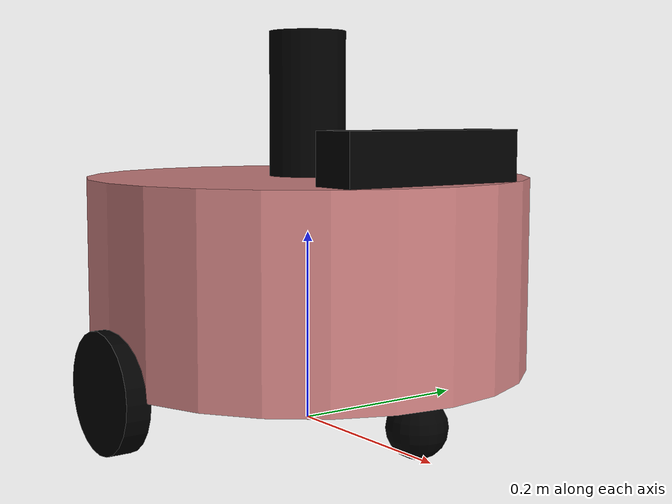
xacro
<?xml version = "v1.0" ?>
<robot name="robo" xmlns:xacro="http://www.ros.org/wiki/xacro">
    <xacro:include filename="$(find robo_description)/urdf/robo_macro.xacro" />

    <base />
    <wheel prefix="left" ref="1" />
    <wheel prefix="right" ref="-1" />

    <caster prefix="front" ref="1" />
    <caster prefix="back" ref="-1" />

    <head_camera />
    <rplidar />

    <gazebo>
        <plugin name="differential_drive_controller"
                filename="libgazebo_ros_diff_drive.so">
            <rosDebugLevel>Debug</rosDebugLevel>
            <publishWheelTF>true</publishWheelTF>
            <robotNamespace>/</robotNamespace>
            <publishTf>1</publishTf>
            <publishWheelJointState>true</publishWheelJointState>
            <alwaysOn>true</alwaysOn>
            <updateRate>100.0</updateRate>
            <legacyMode>true</legacyMode>
            <leftJoint>left_wheel_joint</leftJoint>
            <rightJoint>right_wheel_joint</rightJoint>
            <wheelSeparation>${base_radius*2}</wheelSeparation>
            <wheelDiameter>${2*wheel_radius}</wheelDiameter>
            <broadcastTF>1</broadcastTF>
            <wheelTorque>30</wheelTorque>
            <wheelAcceleration>1.8</wheelAcceleration>
            <commandTopic>cmd_vel</commandTopic>
            <odometryFrame>odom</odometryFrame>
            <odometryTopic>odom</odometryTopic>
            <robotBaseFrame>base_link</robotBaseFrame>
        </plugin>
    </gazebo>

</robot>

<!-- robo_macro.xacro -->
<robot name="robo" xmlns:xacro="http://www.ros.org/wiki/xacro">

    <!-- Define property -->
    <xacro:property name="pi" value="3.1415926" />
    <xacro:property name="base_length" value="0.2" />
    <xacro:property name="base_radius" value="0.23" />
    <xacro:property name="wheel_radius" value="0.06" />
    <xacro:property name="wheel_length" value="0.025" />
    <xacro:property name="caster_radius" value="0.03" />
    <xacro:property name="caster_offset" value="0.18" />
    <xacro:property name="camera_height" value="0.05" />
    <xacro:property name="camera_offset_x" value="0.18" />
    <xacro:property name="rplidar_length" value="0.15" />
    <xacro:property name="rplidar_radius" value="0.04" />

    <!-- Define mass -->
    <xacro:property name="base_mass" value="2" />
    <xacro:property name="wheel_mass" value="1" />
    <xacro:property name="caster_mass" value="0.5" />
    <xacro:property name="camera_mass" value="0.5" />
    <xacro:property name="rplidar_mass" value="0.5" />

    <!-- Define color -->
    <material name="wheel_clr">
        <color rgba="0 0 0 1" />
    </material>

    <material name="base_clr">
        <color rgba="0.8 0.5 0.5 1" />
    </material>

    <!-- Macro for inertia matrix -->
    <xacro:macro name="sphere_inertia_matrix" params="m r">
        <inertial>
            <mass value="${m}" />
            <inertia ixx="${2*m*r*r/5}" ixy="0" ixz="0"
                     iyy="${2*m*r*r/5}" iyz="0"
                     izz="${2*m*r*r/5}" />
        </inertial>
    </xacro:macro>

     <xacro:macro name="cylinder_inertia_matrix" params="m r h">
        <inertial>
            <mass value="${m}" />
            <inertia ixx="${m*(3*r*r+h*h)/12}" ixy="0" ixz="0"
                     iyy="${m*(3*r*r+h*h)/12}" iyz="0"
                     izz="${m*r*r/2}" />
        </inertial>
    </xacro:macro>

    <xacro:macro name="box_inertia_matrix" params="m w d h">
        <inertial>
            <mass value="${m}" />
            <inertia ixx="${1/12*m*(h*h+d*d)}" ixy="0" ixz="0"
                     iyy="${1/12*m*(w*w+d*d)}" iyz="0"
                     izz="${1/12*m*(w*w+h*h)}" />
        </inertial>
    </xacro:macro>

    <!-- Macro for robot base & wheel & caster -->
    <xacro:macro name="base">
        <link name = "base_link">
            <visual>
                <origin xyz="0 0 ${wheel_radius + base_length/2}" rpy="0 0 0" />
                <geometry>
                    <cylinder length="${base_length}" radius="${base_radius}" />
                </geometry>
                <material name="base_clr" />
            </visual>
            <collision>
                <origin xyz="0 0 ${wheel_radius + base_length/2}" rpy="0 0 0" />
                <geometry>
                    <cylinder length="${base_length}" radius="${base_radius}" />
                </geometry>
            </collision>
            <cylinder_inertia_matrix m="${base_mass}" r="${base_radius}" h="${base_length}" />
        </link>

        <gazebo reference="base_link">
            <material>Gazebo/Red</material>
            <turnGravityOff>false</turnGravityOff>
        </gazebo>
    </xacro:macro>

    <xacro:macro name="wheel" params="prefix ref">
        <link name = "${prefix}_wheel">
            <visual>
                <origin xyz="0 0 0" rpy="${pi/2} 0 0" />
                <geometry>
                    <cylinder length="${wheel_length}" radius="${wheel_radius}" />
                </geometry>
                <material name="wheel_clr" />
            </visual>
            <collision>
                <origin xyz="0 0 0" rpy="${pi/2} 0 0" />
                <geometry>
                    <cylinder length="${wheel_length}" radius="${wheel_radius}" />
                </geometry>
            </collision>
            <cylinder_inertia_matrix m="${wheel_mass}" r="${wheel_radius}" h="${wheel_length}" />
        </link>

        <joint name="${prefix}_wheel_joint" type="continuous">
            <origin xyz="0 ${ref*base_radius} ${wheel_radius}" rpy="0 0 0" />
            <parent link="base_link" />
            <child link="${prefix}_wheel" />
            <axis xyz="0 1 0" />
        </joint>

        <gazebo reference="${prefix}_wheel">
            <material>Gazebo/Gray</material>
            <turnGravityOff>false</turnGravityOff>
        </gazebo>

        <transmission name="${prefix}_wheel_joint_trans">
            <type>transmission_interface/SimpleTransmission</type>
            <joint name="${prefix}_wheel_joint">
                <hardwareInterface>hardware_interface/VelocityJointInterface</hardwareInterface>
            </joint>
            <actuator name="${prefix}_wheel_joint_motor">
                <hardwareInterface>hardware_interface/VelocityJointInterface</hardwareInterface>
                <mechanicalReduction>1</mechanicalReduction>
            </actuator>
        </transmission>
    </xacro:macro>

    <xacro:macro name="caster" params="prefix ref">
        <link name="${prefix}_caster">
            <visual>
                <origin xyz="0 0 0" rpy="0 0 0" />
                <geometry>
                    <sphere radius="${caster_radius}" />
                </geometry>
                <material name="wheel_clr" />
            </visual>
            <collision>
                <origin xyz="0 0 0" rpy="0 0 0" />
                <geometry>
                    <sphere radius="${caster_radius}" />
                </geometry>
            </collision>
            <sphere_inertia_matrix m="${caster_mass}" r="${caster_radius}" />
        </link>

        <joint name="${prefix}_caster_joint" type="continuous">
            <origin xyz="${ref*caster_offset} 0 ${caster_radius}" rpy="0 0 0" />
            <parent link="base_link" />
            <child link="${prefix}_caster" />
            <axis xyz="0 1 0" />
        </joint>

        <gazebo reference="${prefix}_caster">
            <material>Gazebo/Black</material>
            <turnGravityOff>false</turnGravityOff>
        </gazebo>
    </xacro:macro>

    <xacro:macro name="head_camera">
        <link name="camera_link">
            <visual>
                <origin xyz="0 0 0" rpy="0 0 0" />
                <geometry>
                    <box size="0.05 0.2 ${camera_height}" />
                </geometry>
                <material name="wheel_clr" />
            </visual>
            <collision>
                <origin xyz="0 0 0" rpy="0 0 0" />
                <geometry>
                    <box size="0.05 0.2 ${camera_height}" />
                </geometry>
            </collision>
            <box_inertia_matrix m="${camera_mass}" w="0.2" d="0.05" h="${camera_height}" />
        </link>

        <joint name="camera_joint" type="fixed">
            <origin xyz="${camera_offset_x} 0 ${wheel_radius + base_length + camera_height/2}" rpy="0 0 0" />
            <parent link="base_link" />
            <child link="camera_link" />
        </joint>

        <gazebo reference="camera_link">
            <material>Gazebo/Black</material>
        </gazebo>

        <gazebo reference="camera_link">
            <sensor type="camera" name="camera1">
                <update_rate>30.0</update_rate>
                <camera name="camera1">
                    <horizontal_fov>1.3962634</horizontal_fov>
                    <image>
                        <width>1280</width>
                        <height>720</height>
                        <format>R8G8B8</format>
                    </image>
                    <clip>
                        <near>0.02</near>
                        <far>300</far>
                    </clip>
                    <noise>
                        <type>gaussian</type>
                        <mean>0.0</mean>
                        <stddev>0.007</stddev>
                    </noise>
                </camera>
                <plugin name="camera_controller" filename="libgazebo_ros_camera.so">
                    <alwaysOn>true</alwaysOn>
                    <updateRate>0.0</updateRate>
                    <cameraName>/camera1</cameraName>
                    <imageTopicName>image_raw</imageTopicName>
                    <cameraInfoTopicName>camera_info</cameraInfoTopicName>
                    <frameName>camera_link</frameName>
                    <hackBaseline>0.07</hackBaseline>
                    <distortionK1>0.0</distortionK1>
                    <distortionK2>0.0</distortionK2>
                    <distortionK3>0.0</distortionK3>
                    <distortionT1>0.0</distortionT1>
                    <distortionT2>0.0</distortionT2>
                </plugin>
            </sensor>
        </gazebo>

    </xacro:macro>

    <xacro:macro name="head_kinect">

        <link name="kinect_link">
            <visual>
                <origin xyz="0 0 0" rpy="0 0 0" />
                <geometry>
                    <box size="0.05 0.2 ${camera_height}" />
                </geometry>
                <material name="wheel_clr" />
            </visual>
            <collision>
                <origin xyz="0 0 0" rpy="0 0 0" />
                <geometry>
                    <box size="0.05 0.2 ${camera_height}" />
                </geometry>
            </collision>
            <box_inertia_matrix m="${camera_mass}" w="0.2" d="0.05" h="${camera_height}" />
        </link>

        <joint name="kinect_joint" type="fixed">
            <origin xyz="${camera_offset_x} 0 ${wheel_radius + base_length + camera_height/2}" rpy="0 0 0" />
            <parent link="base_link" />
            <child link="kinect_link" />
        </joint>

        <gazebo reference="kinect_link">
            <material>Gazebo/Black</material>
        </gazebo>

        <gazebo reference="kinect_link">
            <sensor name="kinect" type="depth">
                <update_rate>20</update_rate>
                <camera>
                <horizontal_fov>1.047198</horizontal_fov>
                <image>
                    <width>640</width>
                    <height>480</height>
                    <format>R8G8B8</format>
                </image>
                <clip>
                    <near>0.05</near>
                    <far>3</far>
                </clip>
                </camera>
                <plugin name="kinect_controller" filename="libgazebo_ros_openni_kinect.so">
                    <baseline>0.2</baseline>
                    <alwaysOn>true</alwaysOn>
                    <updateRate>1.0</updateRate>
                    <cameraName>kinect</cameraName>
                    <imageTopicName>/kinect/color/image_raw</imageTopicName>
                    <cameraInfoTopicName>/kinect/color/camera_info</cameraInfoTopicName>
                    <depthImageTopicName>/kinect/depth/image_raw</depthImageTopicName>
                    <depthImageInfoTopicName>/kinect/depth/camera_info</depthImageInfoTopicName>
                    <pointCloudTopicName>/kinect/depth/points</pointCloudTopicName>
                    <frameName>kinect_link</frameName>
                    <pointCloudCutoff>0.5</pointCloudCutoff>
                    <pointCloudCutoffMax>3.0</pointCloudCutoffMax>
                    <distortionK1>0.00000001</distortionK1>
                    <distortionK2>0.00000001</distortionK2>
                    <distortionK3>0.00000001</distortionK3>
                    <distortionT1>0.00000001</distortionT1>
                    <distortionT2>0.00000001</distortionT2>
                    <CxPrime>0</CxPrime>
                    <Cx>0</Cx>
                    <Cy>0</Cy>
                    <focalLength>0</focalLength>
                    <hackBaseline>0</hackBaseline>
                </plugin>
            </sensor>
        </gazebo>

    </xacro:macro>

    <xacro:macro name="rplidar">
        <link name="rplidar_link">
            <visual>
                <origin xyz="0 0 0" rpy="0 0 0" />
                <geometry>
                    <cylinder length="${rplidar_length}" radius="${rplidar_radius}" />
                </geometry>
                <material name="wheel_clr" />
            </visual>
            <collision>
                <origin xyz="0 0 0" rpy="0 0 0" />
                <geometry>
                    <cylinder length="${rplidar_length}" radius="${rplidar_radius}" />
                </geometry>
            </collision>
            <cylinder_inertia_matrix m="${rplidar_mass}" r="${rplidar_radius}" h="${rplidar_length}" />
        </link>

        <joint name="rplidar_joint" type="fixed">
            <origin xyz="0 0 ${wheel_radius + base_length + rplidar_length/2}" rpy="0 0 0" />
            <parent link="base_link" />
            <child link="rplidar_link" />
        </joint>

        <gazebo reference="rplidar_link">
            <material>Gazebo/Black</material>
        </gazebo>

        <gazebo reference="rplidar_link">
            <sensor type="ray" name="rplidar">
                <pose>0 0 0 0 0 0</pose>
                <visualize>false</visualize>
                <update_rate>40</update_rate>
                <ray>
                    <scan>
                    <horizontal>
                        <samples>720</samples>
                        <resolution>1</resolution>
                        <min_angle>-3.1416</min_angle>
                        <max_angle>3.1416</max_angle>
                    </horizontal>
                    </scan>
                    <range>
                        <min>0.10</min>
                        <max>30.0</max>
                        <resolution>0.01</resolution>
                    </range>
                    <noise>
                    <type>gaussian</type>
                    <mean>0.0</mean>
                    <stddev>0.01</stddev>
                    </noise>
                </ray>
                <plugin name="gazebo_ros_head_hokuyo_controller" filename="libgazebo_ros_laser.so">
                    <topicName>/scan</topicName>
                    <frameName>rplidar_link</frameName>
                </plugin>
            </sensor>
        </gazebo>
    </xacro:macro>

</robot>
